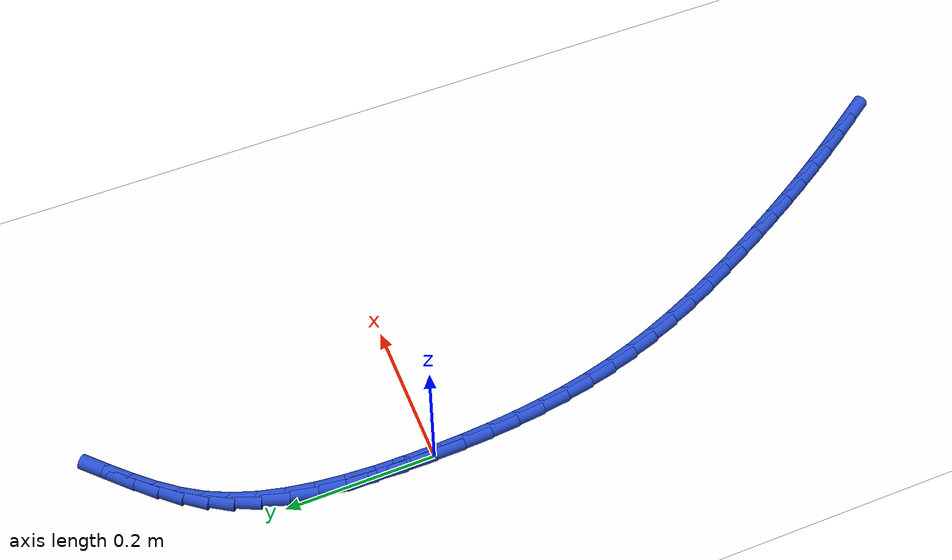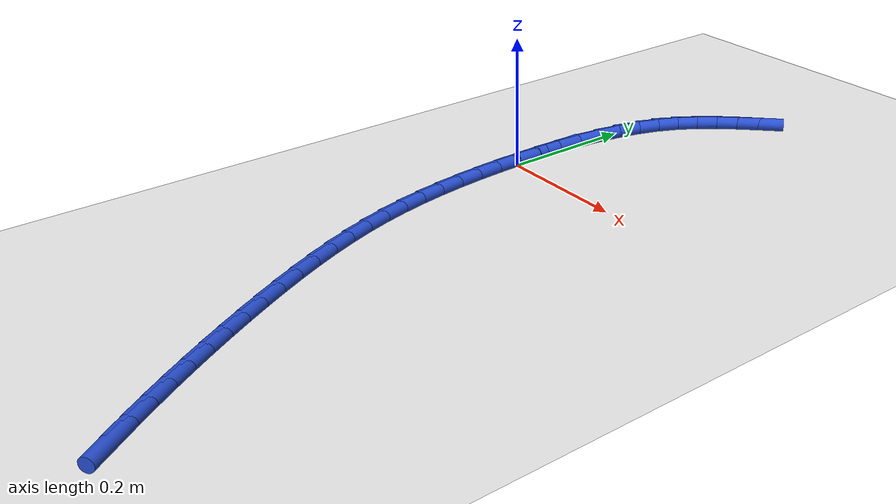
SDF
<sdf version="1.6">
 <world name="default">
  <model name="ground_plane">
   <static>1</static>
   <link name="link">
    <collision name="collision">
     <geometry><plane><normal>0 0 1</normal><size>100 100</size></plane></geometry>
     <surface><friction><ode><mu>100</mu><mu2>50</mu2></ode></friction></surface>
    </collision>
    <visual name="visual">
     <cast_shadows>0</cast_shadows>
     <geometry><plane><normal>0 0 1</normal><size>100 100</size></plane></geometry>
     <material>
      <script><uri>file://media/materials/scripts/gazebo.material</uri><name>Gazebo/WhiteGlow</name></script>
     </material>
    </visual>
   </link>
  </model>
  <model name="line">
   <link name="link_0">
    <pose>4.336808689942018e-18 -4.85722573273506e-17 0.01 0 1.57 -1.5625181138658581</pose>
    <collision name="collision">
     <geometry><cylinder><radius>0.01</radius><length>0.08</length></cylinder></geometry>
    </collision>
    <visual name="visual">
     <material>
      <script><name>Gazebo/Blue</name><uri>file://media/materials/scripts/gazebo.material</uri></script>
     </material>
     <geometry><cylinder><radius>0.01</radius><length>0.08</length></cylinder></geometry>
    </visual>
   </link>
   <link name="link_1">
    <pose>-0.00032513500696293993 0.03927509266525714 0.01 0 1.57 1.548888663003254</pose>
    <collision name="collision">
     <geometry><cylinder><radius>0.01</radius><length>0.08</length></cylinder></geometry>
    </collision>
    <visual name="visual">
     <material>
      <script><name>Gazebo/Blue</name><uri>file://media/materials/scripts/gazebo.material</uri></script>
     </material>
     <geometry><cylinder><radius>0.01</radius><length>0.08</length></cylinder></geometry>
    </visual>
   </link>
   <link name="link_2">
    <pose>0.0005396147541233159 0.07874125485230433 0.01 0 1.57 1.5107290629347268</pose>
    <collision name="collision">
     <geometry><cylinder><radius>0.01</radius><length>0.08</length></cylinder></geometry>
    </collision>
    <visual name="visual">
     <material>
      <script><name>Gazebo/Blue</name><uri>file://media/materials/scripts/gazebo.material</uri></script>
     </material>
     <geometry><cylinder><radius>0.01</radius><length>0.08</length></cylinder></geometry>
    </visual>
   </link>
   <link name="link_3">
    <pose>0.0028932114541193013 0.11787680416389244 0.01 0 1.57 1.4630373731802901</pose>
    <collision name="collision">
     <geometry><cylinder><radius>0.01</radius><length>0.08</length></cylinder></geometry>
    </collision>
    <visual name="visual">
     <material>
      <script><name>Gazebo/Blue</name><uri>file://media/materials/scripts/gazebo.material</uri></script>
     </material>
     <geometry><cylinder><radius>0.01</radius><length>0.08</length></cylinder></geometry>
    </visual>
   </link>
   <link name="link_4">
    <pose>0.007034617263885548 0.1561600582027724 0.01 0 1.57 1.4036282458163574</pose>
    <collision name="collision">
     <geometry><cylinder><radius>0.01</radius><length>0.08</length></cylinder></geometry>
    </collision>
    <visual name="visual">
     <material>
      <script><name>Gazebo/Blue</name><uri>file://media/materials/scripts/gazebo.material</uri></script>
     </material>
     <geometry><cylinder><radius>0.01</radius><length>0.08</length></cylinder></geometry>
    </visual>
   </link>
   <link name="link_5">
    <pose>0.013262794354282582 0.19306933457169517 0.01 0 1.57 1.329570792142605</pose>
    <collision name="collision">
     <geometry><cylinder><radius>0.01</radius><length>0.08</length></cylinder></geometry>
    </collision>
    <visual name="visual">
     <material>
      <script><name>Gazebo/Blue</name><uri>file://media/materials/scripts/gazebo.material</uri></script>
     </material>
     <geometry><cylinder><radius>0.01</radius><length>0.08</length></cylinder></geometry>
    </visual>
   </link>
   <link name="link_6">
    <pose>0.02187670489617094 0.22808295087341174 0.01 0 1.57 1.2371334630446404</pose>
    <collision name="collision">
     <geometry><cylinder><radius>0.01</radius><length>0.08</length></cylinder></geometry>
    </collision>
    <visual name="visual">
     <material>
      <script><name>Gazebo/Blue</name><uri>file://media/materials/scripts/gazebo.material</uri></script>
     </material>
     <geometry><cylinder><radius>0.01</radius><length>0.08</length></cylinder></geometry>
    </visual>
   </link>
   <link name="link_7">
    <pose>0.03317531106041114 0.26067922471067284 0.01 0 1.57 1.123995871801635</pose>
    <collision name="collision">
     <geometry><cylinder><radius>0.01</radius><length>0.08</length></cylinder></geometry>
    </collision>
    <visual name="visual">
     <material>
      <script><name>Gazebo/Blue</name><uri>file://media/materials/scripts/gazebo.material</uri></script>
     </material>
     <geometry><cylinder><radius>0.01</radius><length>0.08</length></cylinder></geometry>
    </visual>
   </link>
   <link name="link_8">
    <pose>0.04742049157269053 0.2904115025099059 0.01 0 1.57 1.0099707841121839</pose>
    <collision name="collision">
     <geometry><cylinder><radius>0.01</radius><length>0.08</length></cylinder></geometry>
    </collision>
    <visual name="visual">
     <material>
      <script><name>Gazebo/Blue</name><uri>file://media/materials/scripts/gazebo.material</uri></script>
     </material>
     <geometry><cylinder><radius>0.01</radius><length>0.08</length></cylinder></geometry>
    </visual>
   </link>
   <link name="link_9">
    <pose>0.06449619456429145 0.31759777615582985 0.01 0 1.57 0.9144282323679278</pose>
    <collision name="collision">
     <geometry><cylinder><radius>0.01</radius><length>0.08</length></cylinder></geometry>
    </collision>
    <visual name="visual">
     <material>
      <script><name>Gazebo/Blue</name><uri>file://media/materials/scripts/gazebo.material</uri></script>
     </material>
     <geometry><cylinder><radius>0.01</radius><length>0.08</length></cylinder></geometry>
    </visual>
   </link>
   <link name="link_10">
    <pose>0.08406562135508168 0.34300266199087953 0.01 0 1.57 0.8432323135860406</pose>
    <collision name="collision">
     <geometry><cylinder><radius>0.01</radius><length>0.08</length></cylinder></geometry>
    </collision>
    <visual name="visual">
     <material>
      <script><name>Gazebo/Blue</name><uri>file://media/materials/scripts/gazebo.material</uri></script>
     </material>
     <geometry><cylinder><radius>0.01</radius><length>0.08</length></cylinder></geometry>
    </visual>
   </link>
   <link name="link_11">
    <pose>0.10578920470671183 0.3673963778237334 0.01 0 1.57 0.798284405389385</pose>
    <collision name="collision">
     <geometry><cylinder><radius>0.01</radius><length>0.08</length></cylinder></geometry>
    </collision>
    <visual name="visual">
     <material>
      <script><name>Gazebo/Blue</name><uri>file://media/materials/scripts/gazebo.material</uri></script>
     </material>
     <geometry><cylinder><radius>0.01</radius><length>0.08</length></cylinder></geometry>
    </visual>
   </link>
   <link name="link_12">
    <pose>0.1293273773808324 0.39154914146306974 0.01 0 1.57 0.7787343318453238</pose>
    <collision name="collision">
     <geometry><cylinder><radius>0.01</radius><length>0.08</length></cylinder></geometry>
    </collision>
    <visual name="visual">
     <material>
      <script><name>Gazebo/Blue</name><uri>file://media/materials/scripts/gazebo.material</uri></script>
     </material>
     <geometry><cylinder><radius>0.01</radius><length>0.08</length></cylinder></geometry>
    </visual>
   </link>
   <link name="link_208">
    <pose>0.2858077292045464 -0.7480940986290717 0.01 0 1.57 -0.970688780962918</pose>
    <collision name="collision">
     <geometry><cylinder><radius>0.01</radius><length>0.08</length></cylinder></geometry>
    </collision>
    <visual name="visual">
     <material>
      <script><name>Gazebo/Blue</name><uri>file://media/materials/scripts/gazebo.material</uri></script>
     </material>
     <geometry><cylinder><radius>0.01</radius><length>0.08</length></cylinder></geometry>
    </visual>
   </link>
   <link name="link_209">
    <pose>0.26548923379339534 -0.7184014890630259 0.01 0 1.57 -0.986513176933802</pose>
    <collision name="collision">
     <geometry><cylinder><radius>0.01</radius><length>0.08</length></cylinder></geometry>
    </collision>
    <visual name="visual">
     <material>
      <script><name>Gazebo/Blue</name><uri>file://media/materials/scripts/gazebo.material</uri></script>
     </material>
     <geometry><cylinder><radius>0.01</radius><length>0.08</length></cylinder></geometry>
    </visual>
   </link>
   <link name="link_210">
    <pose>0.24566924586151181 -0.6884305733777185 0.01 0 1.57 -1.0022122158497109</pose>
    <collision name="collision">
     <geometry><cylinder><radius>0.01</radius><length>0.08</length></cylinder></geometry>
    </collision>
    <visual name="visual">
     <material>
      <script><name>Gazebo/Blue</name><uri>file://media/materials/scripts/gazebo.material</uri></script>
     </material>
     <geometry><cylinder><radius>0.01</radius><length>0.08</length></cylinder></geometry>
    </visual>
   </link>
   <link name="link_211">
    <pose>0.22631152259254897 -0.6581355056596421 0.01 0 1.57 -1.017702345175848</pose>
    <collision name="collision">
     <geometry><cylinder><radius>0.01</radius><length>0.08</length></cylinder></geometry>
    </collision>
    <visual name="visual">
     <material>
      <script><name>Gazebo/Blue</name><uri>file://media/materials/scripts/gazebo.material</uri></script>
     </material>
     <geometry><cylinder><radius>0.01</radius><length>0.08</length></cylinder></geometry>
    </visual>
   </link>
   <link name="link_212">
    <pose>0.20737982117015785 -0.6274704399952855 0.01 0 1.57 -1.0329030772101722</pose>
    <collision name="collision">
     <geometry><cylinder><radius>0.01</radius><length>0.08</length></cylinder></geometry>
    </collision>
    <visual name="visual">
     <material>
      <script><name>Gazebo/Blue</name><uri>file://media/materials/scripts/gazebo.material</uri></script>
     </material>
     <geometry><cylinder><radius>0.01</radius><length>0.08</length></cylinder></geometry>
    </visual>
   </link>
   <link name="link_213">
    <pose>0.1888378987779906 -0.5963895304711399 0.01 0 1.57 -1.0477384653312645</pose>
    <collision name="collision">
     <geometry><cylinder><radius>0.01</radius><length>0.08</length></cylinder></geometry>
    </collision>
    <visual name="visual">
     <material>
      <script><name>Gazebo/Blue</name><uri>file://media/materials/scripts/gazebo.material</uri></script>
     </material>
     <geometry><cylinder><radius>0.01</radius><length>0.08</length></cylinder></geometry>
    </visual>
   </link>
   <link name="link_214">
    <pose>0.17064951259969896 -0.5648469311736957 0.01 0 1.57 -1.0621384015104447</pose>
    <collision name="collision">
     <geometry><cylinder><radius>0.01</radius><length>0.08</length></cylinder></geometry>
    </collision>
    <visual name="visual">
     <material>
      <script><name>Gazebo/Blue</name><uri>file://media/materials/scripts/gazebo.material</uri></script>
     </material>
     <geometry><cylinder><radius>0.01</radius><length>0.08</length></cylinder></geometry>
    </visual>
   </link>
   <link name="link_215">
    <pose>0.15277841981893447 -0.5327967961894424 0.01 0 1.57 -1.0761936358513056</pose>
    <collision name="collision">
     <geometry><cylinder><radius>0.01</radius><length>0.08</length></cylinder></geometry>
    </collision>
    <visual name="visual">
     <material>
      <script><name>Gazebo/Blue</name><uri>file://media/materials/scripts/gazebo.material</uri></script>
     </material>
     <geometry><cylinder><radius>0.01</radius><length>0.08</length></cylinder></geometry>
    </visual>
   </link>
   <link name="link_216">
    <pose>0.13519655960221535 -0.5001964361186477 0.01 0 1.57 -1.092241785686701</pose>
    <collision name="collision">
     <geometry><cylinder><radius>0.01</radius><length>0.08</length></cylinder></geometry>
    </collision>
    <visual name="visual">
     <material>
      <script><name>Gazebo/Blue</name><uri>file://media/materials/scripts/gazebo.material</uri></script>
     </material>
     <geometry><cylinder><radius>0.01</radius><length>0.08</length></cylinder></geometry>
    </visual>
   </link>
   <link name="link_217">
    <pose>0.11800195233299524 -0.46705180222785436 0.01 0 1.57 -1.1122027080539603</pose>
    <collision name="collision">
     <geometry><cylinder><radius>0.01</radius><length>0.08</length></cylinder></geometry>
    </collision>
    <visual name="visual">
     <material>
      <script><name>Gazebo/Blue</name><uri>file://media/materials/scripts/gazebo.material</uri></script>
     </material>
     <geometry><cylinder><radius>0.01</radius><length>0.08</length></cylinder></geometry>
    </visual>
   </link>
   <link name="link_218">
    <pose>0.10139157968609427 -0.4334070238981961 0.01 0 1.57 -1.1362596972567514</pose>
    <collision name="collision">
     <geometry><cylinder><radius>0.01</radius><length>0.08</length></cylinder></geometry>
    </collision>
    <visual name="visual">
     <material>
      <script><name>Gazebo/Blue</name><uri>file://media/materials/scripts/gazebo.material</uri></script>
     </material>
     <geometry><cylinder><radius>0.01</radius><length>0.08</length></cylinder></geometry>
    </visual>
   </link>
   <link name="link_219">
    <pose>0.08556508140004979 -0.39930725596085564 0.01 0 1.57 -1.1646039954755032</pose>
    <collision name="collision">
     <geometry><cylinder><radius>0.01</radius><length>0.08</length></cylinder></geometry>
    </collision>
    <visual name="visual">
     <material>
      <script><name>Gazebo/Blue</name><uri>file://media/materials/scripts/gazebo.material</uri></script>
     </material>
     <geometry><cylinder><radius>0.01</radius><length>0.08</length></cylinder></geometry>
    </visual>
   </link>
   <link name="link_220">
    <pose>0.07072209721340018 -0.3647976532470182 0.01 0 1.57 -1.1974761309850304</pose>
    <collision name="collision">
     <geometry><cylinder><radius>0.01</radius><length>0.08</length></cylinder></geometry>
    </collision>
    <visual name="visual">
     <material>
      <script><name>Gazebo/Blue</name><uri>file://media/materials/scripts/gazebo.material</uri></script>
     </material>
     <geometry><cylinder><radius>0.01</radius><length>0.08</length></cylinder></geometry>
    </visual>
   </link>
   <link name="link_221">
    <pose>0.05706226686468273 -0.3299233705878664 0.01 0 1.57 -1.2351545572378881</pose>
    <collision name="collision">
     <geometry><cylinder><radius>0.01</radius><length>0.08</length></cylinder></geometry>
    </collision>
    <visual name="visual">
     <material>
      <script><name>Gazebo/Blue</name><uri>file://media/materials/scripts/gazebo.material</uri></script>
     </material>
     <geometry><cylinder><radius>0.01</radius><length>0.08</length></cylinder></geometry>
    </visual>
   </link>
   <link name="link_222">
    <pose>0.044785230092435055 -0.294729562814584 0.01 0 1.57 -1.277908013945533</pose>
    <collision name="collision">
     <geometry><cylinder><radius>0.01</radius><length>0.08</length></cylinder></geometry>
    </collision>
    <visual name="visual">
     <material>
      <script><name>Gazebo/Blue</name><uri>file://media/materials/scripts/gazebo.material</uri></script>
     </material>
     <geometry><cylinder><radius>0.01</radius><length>0.08</length></cylinder></geometry>
    </visual>
   </link>
   <link name="link_223">
    <pose>0.03408926661610061 -0.2592609095834635 0.01 0 1.57 -1.3234258326445942</pose>
    <collision name="collision">
     <geometry><cylinder><radius>0.01</radius><length>0.08</length></cylinder></geometry>
    </collision>
    <visual name="visual">
     <material>
      <script><name>Gazebo/Blue</name><uri>file://media/materials/scripts/gazebo.material</uri></script>
     </material>
     <geometry><cylinder><radius>0.01</radius><length>0.08</length></cylinder></geometry>
    </visual>
   </link>
   <link name="link_224">
    <pose>0.025064217085075013 -0.2235242031980119 0.01 0 1.57 -1.3670795671190243</pose>
    <collision name="collision">
     <geometry><cylinder><radius>0.01</radius><length>0.08</length></cylinder></geometry>
    </collision>
    <visual name="visual">
     <material>
      <script><name>Gazebo/Blue</name><uri>file://media/materials/scripts/gazebo.material</uri></script>
     </material>
     <geometry><cylinder><radius>0.01</radius><length>0.08</length></cylinder></geometry>
    </visual>
   </link>
   <link name="link_225">
    <pose>0.017614268539817207 -0.18746137074502806 0.01 0 1.57 -1.407962335927992</pose>
    <collision name="collision">
     <geometry><cylinder><radius>0.01</radius><length>0.08</length></cylinder></geometry>
    </collision>
    <visual name="visual">
     <material>
      <script><name>Gazebo/Blue</name><uri>file://media/materials/scripts/gazebo.material</uri></script>
     </material>
     <geometry><cylinder><radius>0.01</radius><length>0.08</length></cylinder></geometry>
    </visual>
   </link>
   <link name="link_226">
    <pose>0.011625391248897323 -0.15100797458259405 0.01 0 1.57 -1.4456868081245866</pose>
    <collision name="collision">
     <geometry><cylinder><radius>0.01</radius><length>0.08</length></cylinder></geometry>
    </collision>
    <visual name="visual">
     <material>
      <script><name>Gazebo/Blue</name><uri>file://media/materials/scripts/gazebo.material</uri></script>
     </material>
     <geometry><cylinder><radius>0.01</radius><length>0.08</length></cylinder></geometry>
    </visual>
   </link>
   <link name="link_227">
    <pose>0.006983555480885524 -0.1140995770687922 0.01 0 1.57 -1.4799696732044083</pose>
    <collision name="collision">
     <geometry><cylinder><radius>0.01</radius><length>0.08</length></cylinder></geometry>
    </collision>
    <visual name="visual">
     <material>
      <script><name>Gazebo/Blue</name><uri>file://media/materials/scripts/gazebo.material</uri></script>
     </material>
     <geometry><cylinder><radius>0.01</radius><length>0.08</length></cylinder></geometry>
    </visual>
   </link>
   <link name="link_228">
    <pose>0.0035747315043518717 -0.07667174056170366 0.01 0 1.57 -1.5106286083053069</pose>
    <collision name="collision">
     <geometry><cylinder><radius>0.01</radius><length>0.08</length></cylinder></geometry>
    </collision>
    <visual name="visual">
     <material>
      <script><name>Gazebo/Blue</name><uri>file://media/materials/scripts/gazebo.material</uri></script>
     </material>
     <geometry><cylinder><radius>0.01</radius><length>0.08</length></cylinder></geometry>
    </visual>
   </link>
   <link name="link_229">
    <pose>0.0012848895878666883 -0.038660027419412574 0.01 0 1.57 -1.5375729462622387</pose>
    <collision name="collision">
     <geometry><cylinder><radius>0.01</radius><length>0.08</length></cylinder></geometry>
    </collision>
    <visual name="visual">
     <material>
      <script><name>Gazebo/Blue</name><uri>file://media/materials/scripts/gazebo.material</uri></script>
     </material>
     <geometry><cylinder><radius>0.01</radius><length>0.08</length></cylinder></geometry>
    </visual>
   </link>
   <link name="link_230">
    <pose>1.734723475976807e-17 -2.1510571102112408e-16 0.01 0 1.57 -1.5607905855215336</pose>
    <collision name="collision">
     <geometry><cylinder><radius>0.01</radius><length>0.08</length></cylinder></geometry>
    </collision>
    <visual name="visual">
     <material>
      <script><name>Gazebo/Blue</name><uri>file://media/materials/scripts/gazebo.material</uri></script>
     </material>
     <geometry><cylinder><radius>0.01</radius><length>0.08</length></cylinder></geometry>
    </visual>
   </link>
   <link name="link_231">
    <pose>-0.00039396699067799357 0.039372779338451215 0.01 0 1.57 1.5612592268750263</pose>
    <collision name="collision">
     <geometry><cylinder><radius>0.01</radius><length>0.08</length></cylinder></geometry>
    </collision>
    <visual name="visual">
     <material>
      <script><name>Gazebo/Blue</name><uri>file://media/materials/scripts/gazebo.material</uri></script>
     </material>
     <geometry><cylinder><radius>0.01</radius><length>0.08</length></cylinder></geometry>
    </visual>
   </link>
   <link name="link_232">
    <pose>-1.1041115597198742e-05 0.07952274823785947 0.01 0 1.57 -1.5706574845670949</pose>
    <collision name="collision">
     <geometry><cylinder><radius>0.01</radius><length>0.08</length></cylinder></geometry>
    </collision>
    <visual name="visual">
     <material>
      <script><name>Gazebo/Blue</name><uri>file://media/materials/scripts/gazebo.material</uri></script>
     </material>
     <geometry><cylinder><radius>0.01</radius><length>0.08</length></cylinder></geometry>
    </visual>
   </link>
  </model>
 </world>
</sdf>
